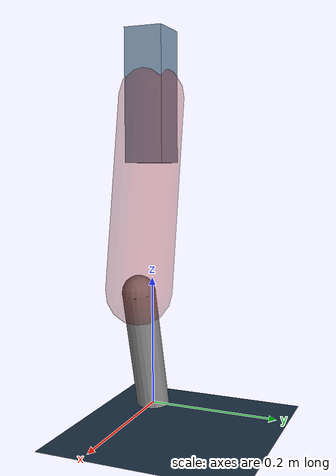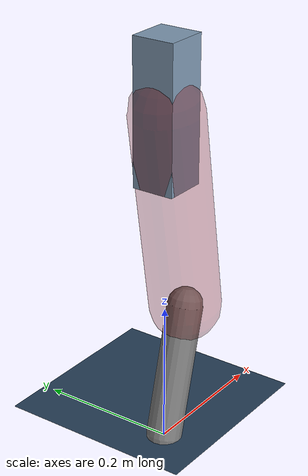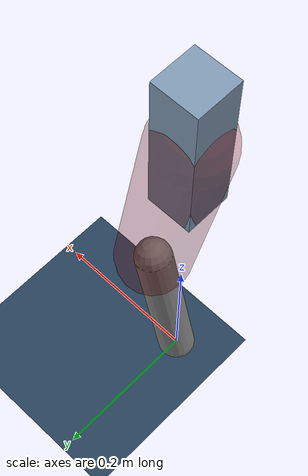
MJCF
<mujoco model="Hopper2D">
	<compiler inertiafromgeom="true" angle="radian" />
	<option timestep="0.001" integrator="implicit" cone="elliptic" solver="Newton" tolerance="1e-10" />

	<default>
		<geom contype="1" conaffinity="1" condim="3" friction="2 0.005 0.0001" solref="0.005 1" />
		<joint limited="true" damping="0.1" />
	</default>

	<asset>
		<texture name="skybox" type="skybox" builtin="gradient" rgb1=".4 .6 .8" rgb2="0 0 0" width="800" height="800" />
		<texture name="grid" type="2d" builtin="checker" rgb1=".1 .2 .3" rgb2=".2 .3 .4" width="300" height="300" mark="edge" markrgb=".2 .3 .4" />
		<material name="ground" texture="grid" texrepeat="1 1" texuniform="true" reflectance="0.1" />
		<material name="leg" rgba="0.5 0.6 0.7 1" />
	</asset>

	<worldbody>

		<geom name="floor" type="plane" size="5 5 0.25" material="ground" />

		<light directional="false" diffuse="0.8 0.8 0.8" specular="0.3 0.3 0.3" pos="0 0 2" dir="0 0 -1" />
		<light mode="targetbodycom" target="base" directional="false" diffuse="0.8 0.8 0.8" specular="0.3 0.3 0.3" pos="0 0 2" dir="0 0 -1" />

		<camera name="fixed" pos="0 -2 1" xyaxes="1 0 0 0 0 1" />
		<camera name="tracking" mode="trackcom" pos="0 -3 1" />

		<body name="root" pos="0 0 0.4790401493042843">
			<joint name="slide_x" type="slide" axis="1 0 0" range="-100 100" />
			<joint name="slide_z" type="slide" axis="0 0 1" range="0 10" />

			<body name="base" pos="0 0 0">
				<geom name="torso" type="box" size="0.03 0.03 0.1" mass="3.628" material="leg" />

				<body name="link1" pos="0 0 0" euler="0 1.4079277918232176 0">
					<joint type="hinge" axis="0 -1 0" pos="0 0 0" name="hinge1" limited="true" range="-3.14 3.14" stiffness="0" damping="0.1" />
					<geom name="thigh" type="capsule" fromto="0 0 0 0.2962389843061485 0 0" size="0.05" rgba="0.5 0 0 0.3" mass="0.9785452576266009" />

					<body name="link2" pos="0.2962389843061485 0 0" euler="0 0.4146633875143336 0">
						<joint type="hinge" axis="0 -1 0" pos="0 0 0" name="hinge2" limited="true" range="-3.14 3.14" stiffness="0" damping="0.1" />
						<geom name="shank" type="capsule" fromto="0 0 0 0.19280116499813582 0 0" size="0.025" mass="0.3948210484983222" />

					</body>
				</body>
			</body>
		</body>
	</worldbody>

	<actuator>
		<motor name="torque1" joint="hinge1" ctrlrange="-132.17322703169629 132.17322703169629" ctrllimited="true" gear="1" />
		<motor name="torque2" joint="hinge2" ctrlrange="-176.12581079057568 176.12581079057568" ctrllimited="true" gear="1" />
	</actuator>
</mujoco>
